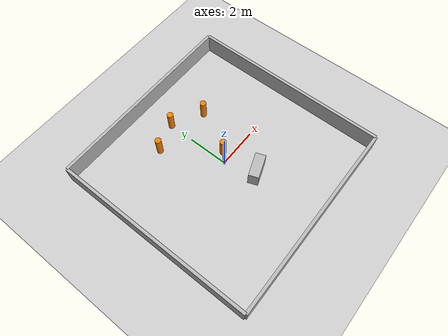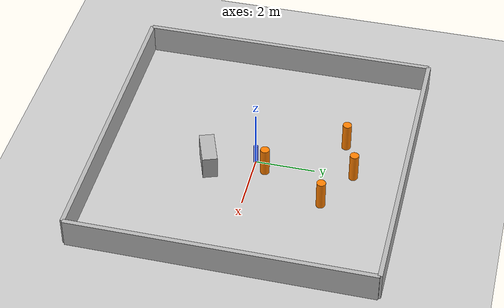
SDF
<?xml version="1.0" ?>
<sdf version="1.6">
  <world name="uwb_feature_world">
    <plugin name="gazebo_ros_state" filename="libgazebo_ros_state.so">
      <ros><namespace>/gazebo</namespace></ros>
      <update_rate>20.0</update_rate>
    </plugin>
    <include><uri>model://sun</uri></include>
    <include><uri>model://ground_plane</uri></include>
    <physics type="ode"><real_time_update_rate>1000</real_time_update_rate></physics>

    <model name="anchor_A0">
      <static>true</static><pose>0 0 0.35 0 0 0</pose>
      <link name="link">
        <collision name="collision">
          <geometry><cylinder><radius>0.07</radius><length>0.7</length></cylinder></geometry>
        </collision>
        <visual name="visual"><geometry><cylinder><radius>0.07</radius><length>0.7</length></cylinder></geometry>
          <material><ambient>0.1 0.2 0.9 1</ambient><diffuse>0.1 0.2 0.9 1</diffuse></material></visual>
      </link>
    </model>

    <model name="landmark_0"><static>true</static><pose>0 3.3 0.5 0 0 0</pose><link name="link">
      <collision name="c"><geometry><cylinder><radius>0.15</radius><length>1</length></cylinder></geometry></collision>
      <visual name="v"><geometry><cylinder><radius>0.15</radius><length>1</length></cylinder></geometry><material><ambient>1 .5 0 1</ambient></material></visual>
    </link></model>
    <model name="landmark_1"><static>true</static><pose>-1.4 2.8 0.5 0 0 0</pose><link name="link">
      <collision name="c"><geometry><cylinder><radius>0.15</radius><length>1</length></cylinder></geometry></collision>
      <visual name="v"><geometry><cylinder><radius>0.15</radius><length>1</length></cylinder></geometry><material><ambient>1 .5 0 1</ambient></material></visual>
    </link></model>
    <model name="landmark_2"><static>true</static><pose>1.5 2.5 0.5 0 0 0</pose><link name="link">
      <collision name="c"><geometry><cylinder><radius>0.15</radius><length>1</length></cylinder></geometry></collision>
      <visual name="v"><geometry><cylinder><radius>0.15</radius><length>1</length></cylinder></geometry><material><ambient>1 .5 0 1</ambient></material></visual>
    </link></model>
    <model name="landmark_3"><static>true</static><pose>0.4 0.4 0.5 0 0 0</pose><link name="link">
      <collision name="c"><geometry><cylinder><radius>0.15</radius><length>1</length></cylinder></geometry></collision>
      <visual name="v"><geometry><cylinder><radius>0.15</radius><length>1</length></cylinder></geometry><material><ambient>1 .5 0 1</ambient></material></visual>
    </link></model>

    <model name="wall_n"><static>true</static><pose>0 5 0.5 0 0 0</pose><link name="l">
      <collision name="c"><geometry><box><size>10 .15 1</size></box></geometry></collision><visual name="v"><geometry><box><size>10 .15 1</size></box></geometry></visual>
    </link></model>
    <model name="wall_s"><static>true</static><pose>0 -5 0.5 0 0 0</pose><link name="l">
      <collision name="c"><geometry><box><size>10 .15 1</size></box></geometry></collision><visual name="v"><geometry><box><size>10 .15 1</size></box></geometry></visual>
    </link></model>
    <model name="wall_e"><static>true</static><pose>5 0 0.5 0 0 0</pose><link name="l">
      <collision name="c"><geometry><box><size>.15 10 1</size></box></geometry></collision><visual name="v"><geometry><box><size>.15 10 1</size></box></geometry></visual>
    </link></model>
    <model name="wall_w"><static>true</static><pose>-5 0 0.5 0 0 0</pose><link name="l">
      <collision name="c"><geometry><box><size>.15 10 1</size></box></geometry></collision><visual name="v"><geometry><box><size>.15 10 1</size></box></geometry></visual>
    </link></model>
    <model name="box_obstacle"><static>true</static><pose>0.5 -1.5 0.4 0 0 .35</pose><link name="l">
      <collision name="c"><geometry><box><size>1.2 .5 .8</size></box></geometry></collision><visual name="v"><geometry><box><size>1.2 .5 .8</size></box></geometry></visual>
    </link></model>
  </world>
</sdf>
